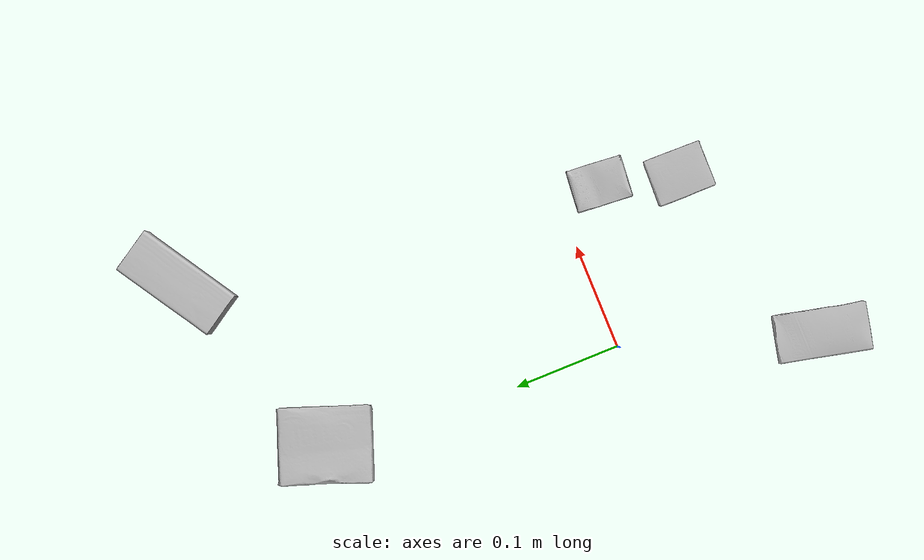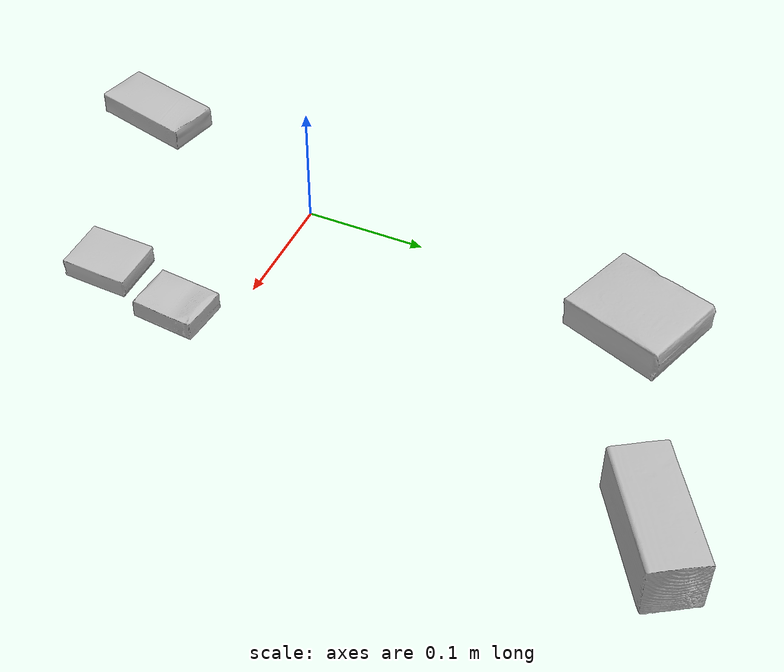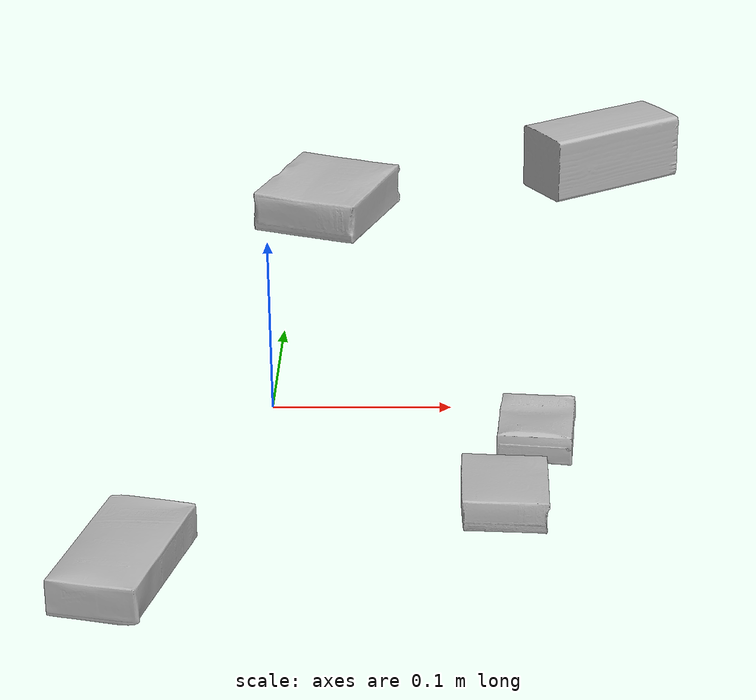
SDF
<sdf version="1.4">
  <world name="default">
    <light name="light1" type="point">
      <pose>0 0 1 0 0 0</pose>
      <diffuse>3 3 3 1</diffuse>
      <specular>3 3 3 1</specular>
    </light>
    <light name="light2" type="point">
      <pose>0 0.5 2 0 0 0</pose>
      <diffuse>1 1 1 1</diffuse>
      <specular>1 1 1 1</specular>
    </light>
    <light name="light3" type="point">
      <pose>0 0.5 2 0 0 0</pose>
      <diffuse>3 3 3 1</diffuse>
      <specular>3 3 3 1</specular>
    </light>
    <scene>
      <ambient>0.7 0.7 0.7</ambient>
    </scene>
    <model name="box1">
      <link name="link_box1">
        <collision name="default">
          <geometry>
            <mesh>
              <uri>model://gelatin_box/collision_meshes/collision.obj</uri>
              <scale>1.0 1.0 1.0</scale>
            </mesh>
          </geometry>
          <surface>
            <friction>
              <ode>
                <mu>0.5</mu>
                <mu2>0.5</mu2>
              </ode>
            </friction>
          <contact>
        <ode>
            <max_vel>0</max_vel>
            <min_depth>0.0001</min_depth>
            <kp>1e8</kp>
        </ode>
    </contact></surface>
        </collision>
        <visual name="default">
          <geometry>
            <mesh>
              <uri>model://gelatin_box/visual_meshes/visual.dae</uri>
              <scale>1.0 1.0 1.0</scale>
            </mesh>
          </geometry>
        </visual>
        <inertial>
          <mass>0.2001359760761261</mass>
          <pose>0.0004319618456065655 0.00011156872642459348 -0.00036403213744051754 -0.0010503718728910522 -0.00475581915504666 0.01644056319729456</pose>
          <inertia>
            <ixx>0.00014127967</ixx>
            <iyy>0.00010091532</iyy>
            <izz>0.00021505913</izz>
            <ixy>0</ixy>
            <ixz>0</ixz>
            <iyz>0</iyz>
          </inertia>
        </inertial>
      </link>
      <pose>0.017737237736582756 0.28475645184516907 0.015168312937021255 0.005597429609148189 -0.007304565356291318 2.783740554086219</pose>
    </model>
    <model name="box2">
      <link name="link_box2">
        <collision name="default">
          <geometry>
            <mesh>
              <uri>model://cracker_box/collision_meshes/collision.obj</uri>
              <scale>0.25 0.25 0.25</scale>
            </mesh>
          </geometry>
          <surface>
            <friction>
              <ode>
                <mu>0.5</mu>
                <mu2>0.5</mu2>
              </ode>
            </friction>
          <contact>
        <ode>
            <max_vel>0</max_vel>
            <min_depth>0.0001</min_depth>
            <kp>1e8</kp>
        </ode>
    </contact></surface>
        </collision>
        <visual name="default">
          <geometry>
            <mesh>
              <uri>model://cracker_box/visual_meshes/visual.dae</uri>
              <scale>0.25 0.25 0.25</scale>
            </mesh>
          </geometry>
        </visual>
        <inertial>
          <mass>0.052757441997528076</mass>
          <pose>0.00023660421720705926 6.358561950037256e-05 -0.0004257383698131889 -0.0003162076882876523 -0.011106491463043667 0.002546795002652857</pose>
          <inertia>
            <ixx>8.38696e-06</ixx>
            <iyy>1.384852e-05</iyy>
            <izz>1.9763109e-05</izz>
            <ixy>0</ixy>
            <ixz>0</ixz>
            <iyz>0</iyz>
          </inertia>
        </inertial>
      </link>
      <pose>0.14613215625286102 -0.04114338755607605 0.009120448492467403 -0.011788019145871825 -0.0073671540242119075 -1.6600812101090163</pose>
    </model>
    <model name="box3">
      <link name="link_box3">
        <collision name="default">
          <geometry>
            <mesh>
              <uri>model://wood_block/collision_meshes/collision.obj</uri>
              <scale>0.5 0.5 0.5</scale>
            </mesh>
          </geometry>
          <surface>
            <friction>
              <ode>
                <mu>0.5</mu>
                <mu2>0.5</mu2>
              </ode>
            </friction>
          <contact>
        <ode>
            <max_vel>0</max_vel>
            <min_depth>0.0001</min_depth>
            <kp>1e8</kp>
        </ode>
    </contact></surface>
        </collision>
        <visual name="default">
          <geometry>
            <mesh>
              <uri>model://wood_block/visual_meshes/visual.dae</uri>
              <scale>0.5 0.5 0.5</scale>
            </mesh>
          </geometry>
        </visual>
        <inertial>
          <mass>0.15567830204963684</mass>
          <pose>-2.9066577553749084e-06 -0.000285404734313488 0.00013204292918089777 -0.052210429644919926 -0.005192696852900695 -0.006861378081336091</pose>
          <inertia>
            <ixx>5.2080282e-05</ixx>
            <iyy>0.00016452163</iyy>
            <izz>0.00016390622</izz>
            <ixy>0</ixy>
            <ixz>0</ixz>
            <iyz>0</iyz>
          </inertia>
        </inertial>
      </link>
      <pose>0.20785875618457794 0.3540814220905304 0.022629251703619957 -0.005208374142047322 0.005718739697535776 0.5621516290981814</pose>
    </model>
    <model name="box4">
      <link name="link_box4">
        <collision name="default">
          <geometry>
            <mesh>
              <uri>model://pudding_box/collision_meshes/collision.obj</uri>
              <scale>0.5 0.5 0.5</scale>
            </mesh>
          </geometry>
          <surface>
            <friction>
              <ode>
                <mu>0.5</mu>
                <mu2>0.5</mu2>
              </ode>
            </friction>
          <contact>
        <ode>
            <max_vel>0</max_vel>
            <min_depth>0.0001</min_depth>
            <kp>1e8</kp>
        </ode>
    </contact></surface>
        </collision>
        <visual name="default">
          <geometry>
            <mesh>
              <uri>model://pudding_box/visual_meshes/visual.dae</uri>
              <scale>0.5 0.5 0.5</scale>
            </mesh>
          </geometry>
        </visual>
        <inertial>
          <mass>0.0498165600001812</mass>
          <pose>0.00024474109522998333 0.00040339428232982755 -0.0002594413817860186 0.00521310227074754 -0.006603796865596143 0.02007982702575369</pose>
          <inertia>
            <ixx>1.4078764e-05</ixx>
            <iyy>9.472293e-06</iyy>
            <izz>2.0790974e-05</izz>
            <ixy>0</ixy>
            <ixz>0</ixz>
            <iyz>0</iyz>
          </inertia>
        </inertial>
      </link>
      <pose>0.12693633139133453 -0.11327105015516281 0.009862902574241161 0.022348566716388428 -0.011391676892336004 3.12350818971705</pose>
    </model>
    <model name="box5">
      <link name="link_box5">
        <collision name="default">
          <geometry>
            <mesh>
              <uri>model://sugar_box/collision_meshes/collision.obj</uri>
              <scale>0.5 0.5 0.5</scale>
            </mesh>
          </geometry>
          <surface>
            <friction>
              <ode>
                <mu>0.5</mu>
                <mu2>0.5</mu2>
              </ode>
            </friction>
          <contact>
        <ode>
            <max_vel>0</max_vel>
            <min_depth>0.0001</min_depth>
            <kp>1e8</kp>
        </ode>
    </contact></surface>
        </collision>
        <visual name="default">
          <geometry>
            <mesh>
              <uri>model://sugar_box/visual_meshes/visual.dae</uri>
              <scale>0.5 0.5 0.5</scale>
            </mesh>
          </geometry>
        </visual>
        <inertial>
          <mass>0.08508674055337906</mass>
          <pose>0.0005171863595023751 1.924554817378521e-05 -0.00018182402709499002 -0.0004046257768003499 0.0010506634050152445 0.002615378556389427</pose>
          <inertia>
            <ixx>1.7723507e-05</ixx>
            <iyy>5.7286023e-05</iyy>
            <izz>6.85782e-05</izz>
            <ixy>0</ixy>
            <ixz>0</ixz>
            <iyz>0</iyz>
          </inertia>
        </inertial>
      </link>
      <pose>-0.0589725598692894 -0.18016943335533142 0.011399305425584316 0.000775266286047364 -0.023432552019261168 -1.8011933716863717</pose>
    </model>
  <physics type="ode">
      <max_contacts>50</max_contacts>
      <ode>
        <solver>
          <type>quick</type>
          <iters>75</iters>
        </solver>
        <constraints>
          <contact_max_correcting_vel>0</contact_max_correcting_vel>
          <contact_surface_layer>0</contact_surface_layer>
        </constraints>
      </ode>
    </physics></world>
</sdf>
